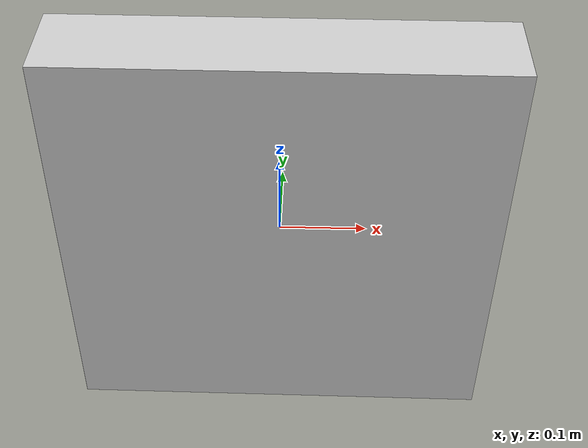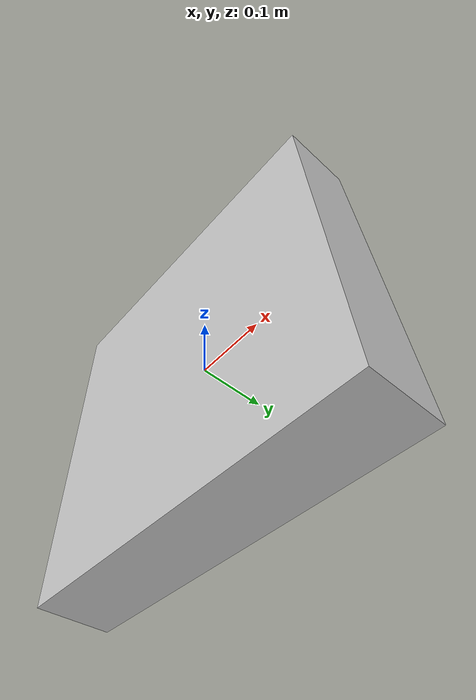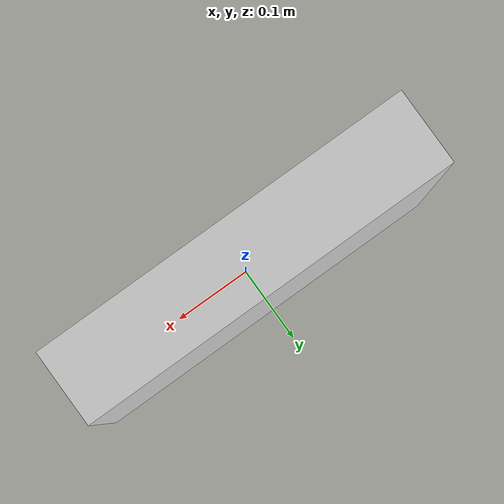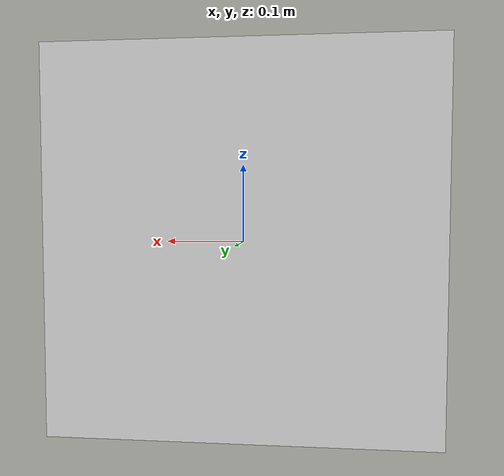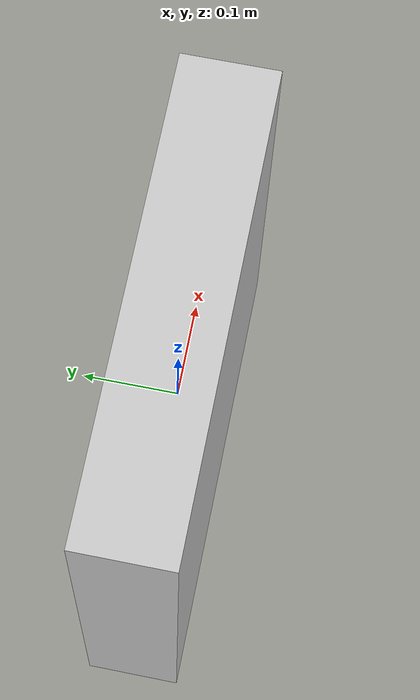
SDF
<?xml version="1.0" ?>
<sdf version="1.6">
  <model name="short_wall">
    <static>true</static>

    <!-- North wall -->
    <link name="wall">
      <collision name="collision">
        <geometry>
          <box>
            <size>0.5 0.1 0.5</size> <!-- width x thickness x height -->
          </box>
        </geometry>
      </collision>
      <visual name="visual">
        <geometry>
          <box>
            <size>0.5 0.1 0.5</size>
          </box>
        </geometry>
        <material>
          <ambient>0.8 0.8 0.8 1</ambient>
        </material>
      </visual>
      <pose>0 0  0 0 0 0</pose>
    </link>
  </model>
</sdf>
